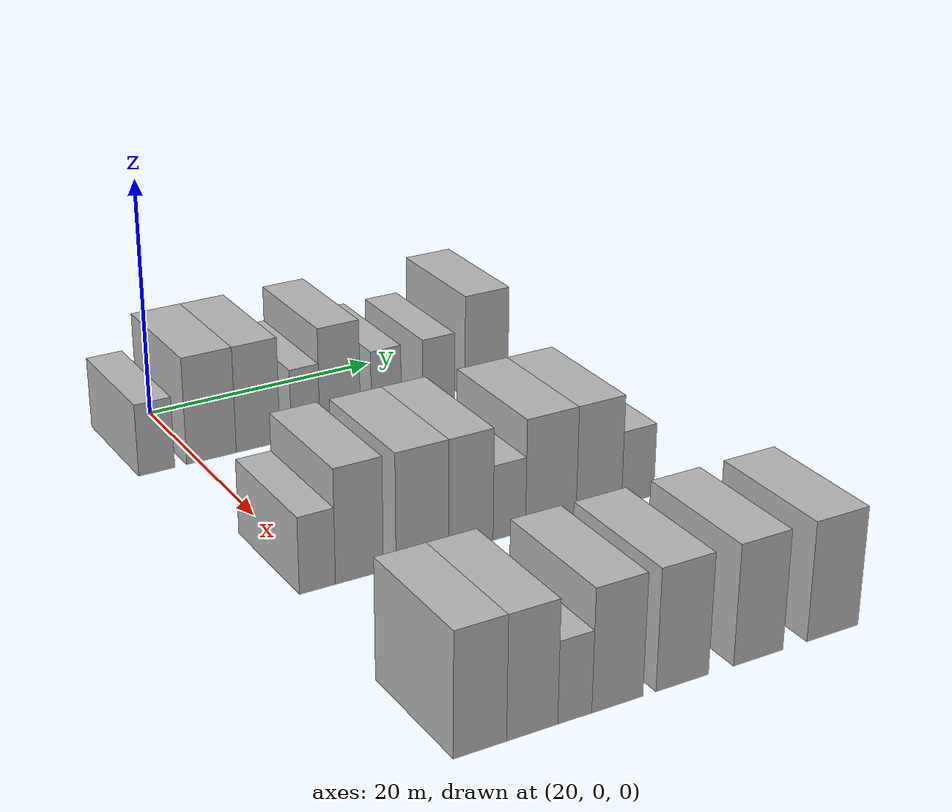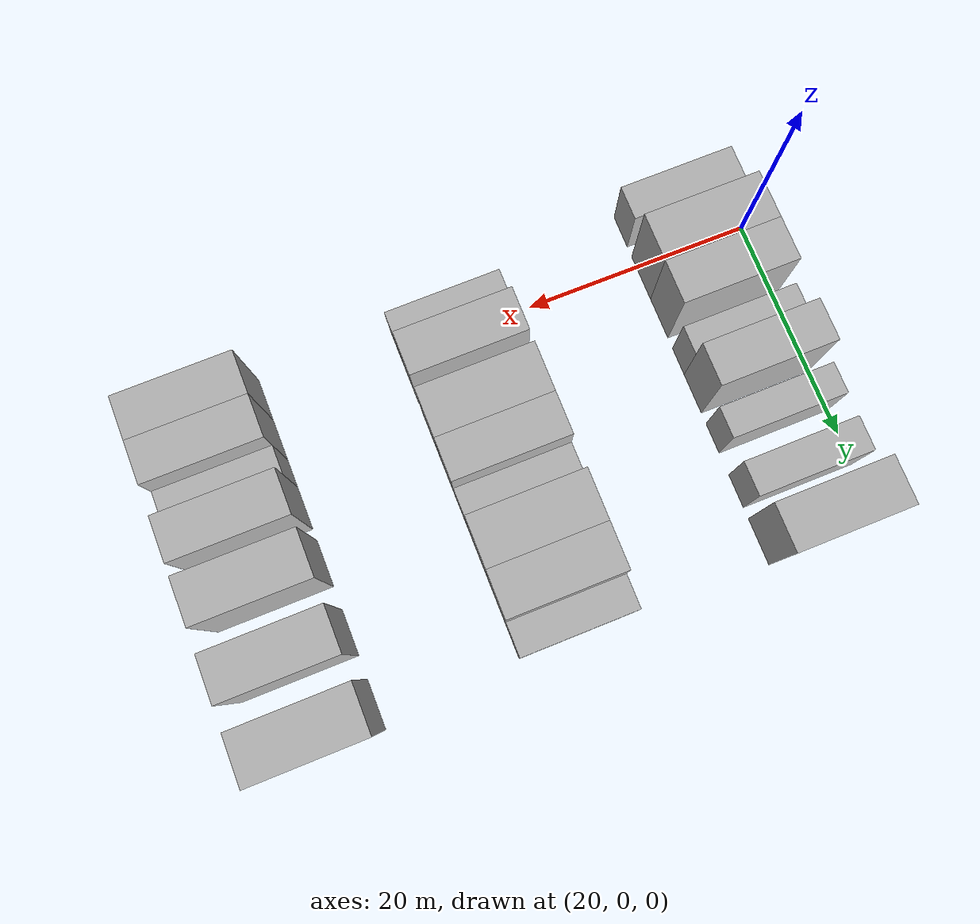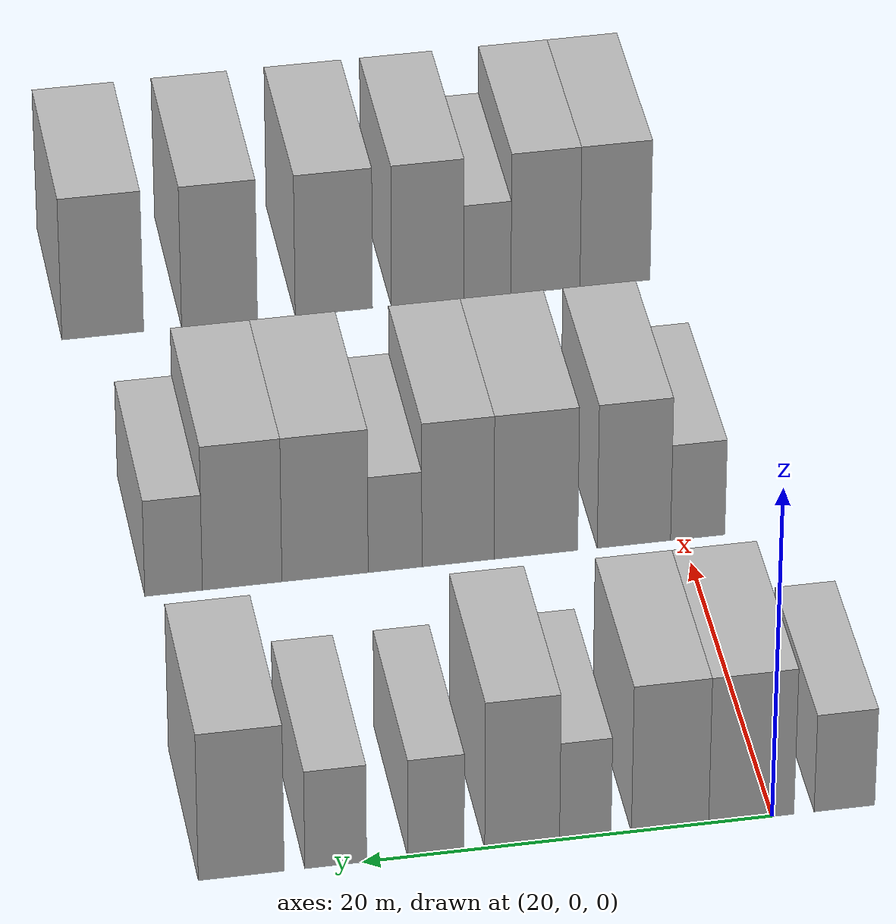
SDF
<sdf version="1.6">
 <world name="default">
  <model name="building_58">
   <static>1</static>
   <pose>25.0000 -3.5515 0 0.000000 0.000000 0.000000</pose>
   <link name="link">
    <pose>0 0 3.00 0 0 0</pose>
    <collision name="collision"><geometry><box><size>10.0000 2.9817 6.0000</size></box></geometry></collision>
    <visual name="visual">
     <cast_shadows>0</cast_shadows>
     <geometry><box><size>10.0000 2.9817 6.0000</size></box></geometry>
     <material>
      <script>
       <uri>model://HANNAS_wall/materials/scripts</uri>
       <uri>model://HANNAS_wall/materials/textures</uri>
       <name>vrc/HANNAS_wall</name>
      </script>
     </material>
    </visual>
   </link>
  </model>
  <model name="building_59">
   <static>1</static>
   <pose>25.0000 1.0328 0 0.000000 0.000000 0.000000</pose>
   <link name="link">
    <pose>0 0 4.50 0 0 0</pose>
    <collision name="collision"><geometry><box><size>10.0000 4.1870 9.0000</size></box></geometry></collision>
    <visual name="visual">
     <cast_shadows>0</cast_shadows>
     <geometry><box><size>10.0000 4.1870 9.0000</size></box></geometry>
     <material>
      <script>
       <uri>model://HANNAS_wall/materials/scripts</uri>
       <uri>model://HANNAS_wall/materials/textures</uri>
       <name>vrc/HANNAS_wall</name>
      </script>
     </material>
    </visual>
   </link>
  </model>
  <model name="building_60">
   <static>1</static>
   <pose>25.0000 5.0197 0 0.000000 0.000000 0.000000</pose>
   <link name="link">
    <pose>0 0 4.50 0 0 0</pose>
    <collision name="collision"><geometry><box><size>10.0000 3.7867 9.0000</size></box></geometry></collision>
    <visual name="visual">
     <cast_shadows>0</cast_shadows>
     <geometry><box><size>10.0000 3.7867 9.0000</size></box></geometry>
     <material>
      <script>
       <uri>model://HANNAS_wall/materials/scripts</uri>
       <uri>model://HANNAS_wall/materials/textures</uri>
       <name>vrc/HANNAS_wall</name>
      </script>
     </material>
    </visual>
   </link>
  </model>
  <model name="building_61">
   <static>1</static>
   <pose>25.0000 9.1701 0 0.000000 0.000000 0.000000</pose>
   <link name="link">
    <pose>0 0 3.00 0 0 0</pose>
    <collision name="collision"><geometry><box><size>10.0000 2.5142 6.0000</size></box></geometry></collision>
    <visual name="visual">
     <cast_shadows>0</cast_shadows>
     <geometry><box><size>10.0000 2.5142 6.0000</size></box></geometry>
     <material>
      <script>
       <uri>model://HANNAS_wall/materials/scripts</uri>
       <uri>model://HANNAS_wall/materials/textures</uri>
       <name>vrc/HANNAS_wall</name>
      </script>
     </material>
    </visual>
   </link>
  </model>
  <model name="building_62">
   <static>1</static>
   <pose>25.0000 12.2522 0 0.000000 0.000000 0.000000</pose>
   <link name="link">
    <pose>0 0 4.50 0 0 0</pose>
    <collision name="collision"><geometry><box><size>10.0000 3.6499 9.0000</size></box></geometry></collision>
    <visual name="visual">
     <cast_shadows>0</cast_shadows>
     <geometry><box><size>10.0000 3.6499 9.0000</size></box></geometry>
     <material>
      <script>
       <uri>model://HANNAS_wall/materials/scripts</uri>
       <uri>model://HANNAS_wall/materials/textures</uri>
       <name>vrc/HANNAS_wall</name>
      </script>
     </material>
    </visual>
   </link>
  </model>
  <model name="building_63">
   <static>1</static>
   <pose>25.0000 16.4479 0 0.000000 0.000000 0.000000</pose>
   <link name="link">
    <pose>0 0 3.00 0 0 0</pose>
    <collision name="collision"><geometry><box><size>10.0000 2.7415 6.0000</size></box></geometry></collision>
    <visual name="visual">
     <cast_shadows>0</cast_shadows>
     <geometry><box><size>10.0000 2.7415 6.0000</size></box></geometry>
     <material>
      <script>
       <uri>model://HANNAS_wall/materials/scripts</uri>
       <uri>model://HANNAS_wall/materials/textures</uri>
       <name>vrc/HANNAS_wall</name>
      </script>
     </material>
    </visual>
   </link>
  </model>
  <model name="building_64">
   <static>1</static>
   <pose>25.0000 21.3149 0 0.000000 0.000000 0.000000</pose>
   <link name="link">
    <pose>0 0 3.00 0 0 0</pose>
    <collision name="collision"><geometry><box><size>10.0000 2.9923 6.0000</size></box></geometry></collision>
    <visual name="visual">
     <cast_shadows>0</cast_shadows>
     <geometry><box><size>10.0000 2.9923 6.0000</size></box></geometry>
     <material>
      <script>
       <uri>model://HANNAS_wall/materials/scripts</uri>
       <uri>model://HANNAS_wall/materials/textures</uri>
       <name>vrc/HANNAS_wall</name>
      </script>
     </material>
    </visual>
   </link>
  </model>
  <model name="building_65">
   <static>1</static>
   <pose>25.0000 25.8842 0 0.000000 0.000000 0.000000</pose>
   <link name="link">
    <pose>0 0 4.50 0 0 0</pose>
    <collision name="collision"><geometry><box><size>10.0000 4.1463 9.0000</size></box></geometry></collision>
    <visual name="visual">
     <cast_shadows>0</cast_shadows>
     <geometry><box><size>10.0000 4.1463 9.0000</size></box></geometry>
     <material>
      <script>
       <uri>model://HANNAS_wall/materials/scripts</uri>
       <uri>model://HANNAS_wall/materials/textures</uri>
       <name>vrc/HANNAS_wall</name>
      </script>
     </material>
    </visual>
   </link>
  </model>
  <model name="building_189">
   <static>1</static>
   <pose>47.0000 -0.7223 0 0.000000 0.000000 0.000000</pose>
   <link name="link">
    <pose>0 0 3.00 0 0 0</pose>
    <collision name="collision"><geometry><box><size>10.0000 2.7866 6.0000</size></box></geometry></collision>
    <visual name="visual">
     <cast_shadows>0</cast_shadows>
     <geometry><box><size>10.0000 2.7866 6.0000</size></box></geometry>
     <material>
      <script>
       <uri>model://HANNAS_wall/materials/scripts</uri>
       <uri>model://HANNAS_wall/materials/textures</uri>
       <name>vrc/HANNAS_wall</name>
      </script>
     </material>
    </visual>
   </link>
  </model>
  <model name="building_190">
   <static>1</static>
   <pose>47.0000 2.5523 0 0.000000 0.000000 0.000000</pose>
   <link name="link">
    <pose>0 0 4.50 0 0 0</pose>
    <collision name="collision"><geometry><box><size>10.0000 3.7625 9.0000</size></box></geometry></collision>
    <visual name="visual">
     <cast_shadows>0</cast_shadows>
     <geometry><box><size>10.0000 3.7625 9.0000</size></box></geometry>
     <material>
      <script>
       <uri>model://HANNAS_wall/materials/scripts</uri>
       <uri>model://HANNAS_wall/materials/textures</uri>
       <name>vrc/HANNAS_wall</name>
      </script>
     </material>
    </visual>
   </link>
  </model>
  <model name="building_191">
   <static>1</static>
   <pose>47.0000 7.5736 0 0.000000 0.000000 0.000000</pose>
   <link name="link">
    <pose>0 0 4.50 0 0 0</pose>
    <collision name="collision"><geometry><box><size>10.0000 4.2803 9.0000</size></box></geometry></collision>
    <visual name="visual">
     <cast_shadows>0</cast_shadows>
     <geometry><box><size>10.0000 4.2803 9.0000</size></box></geometry>
     <material>
      <script>
       <uri>model://HANNAS_wall/materials/scripts</uri>
       <uri>model://HANNAS_wall/materials/textures</uri>
       <name>vrc/HANNAS_wall</name>
      </script>
     </material>
    </visual>
   </link>
  </model>
  <model name="building_192">
   <static>1</static>
   <pose>47.0000 11.5489 0 0.000000 0.000000 0.000000</pose>
   <link name="link">
    <pose>0 0 4.50 0 0 0</pose>
    <collision name="collision"><geometry><box><size>10.0000 3.6703 9.0000</size></box></geometry></collision>
    <visual name="visual">
     <cast_shadows>0</cast_shadows>
     <geometry><box><size>10.0000 3.6703 9.0000</size></box></geometry>
     <material>
      <script>
       <uri>model://HANNAS_wall/materials/scripts</uri>
       <uri>model://HANNAS_wall/materials/textures</uri>
       <name>vrc/HANNAS_wall</name>
      </script>
     </material>
    </visual>
   </link>
  </model>
  <model name="building_193">
   <static>1</static>
   <pose>47.0000 14.7496 0 0.000000 0.000000 0.000000</pose>
   <link name="link">
    <pose>0 0 3.00 0 0 0</pose>
    <collision name="collision"><geometry><box><size>10.0000 2.7311 6.0000</size></box></geometry></collision>
    <visual name="visual">
     <cast_shadows>0</cast_shadows>
     <geometry><box><size>10.0000 2.7311 6.0000</size></box></geometry>
     <material>
      <script>
       <uri>model://HANNAS_wall/materials/scripts</uri>
       <uri>model://HANNAS_wall/materials/textures</uri>
       <name>vrc/HANNAS_wall</name>
      </script>
     </material>
    </visual>
   </link>
  </model>
  <model name="building_194">
   <static>1</static>
   <pose>47.0000 18.3026 0 0.000000 0.000000 0.000000</pose>
   <link name="link">
    <pose>0 0 4.50 0 0 0</pose>
    <collision name="collision"><geometry><box><size>10.0000 4.3749 9.0000</size></box></geometry></collision>
    <visual name="visual">
     <cast_shadows>0</cast_shadows>
     <geometry><box><size>10.0000 4.3749 9.0000</size></box></geometry>
     <material>
      <script>
       <uri>model://HANNAS_wall/materials/scripts</uri>
       <uri>model://HANNAS_wall/materials/textures</uri>
       <name>vrc/HANNAS_wall</name>
      </script>
     </material>
    </visual>
   </link>
  </model>
  <model name="building_195">
   <static>1</static>
   <pose>47.0000 22.4997 0 0.000000 0.000000 0.000000</pose>
   <link name="link">
    <pose>0 0 4.50 0 0 0</pose>
    <collision name="collision"><geometry><box><size>10.0000 4.0193 9.0000</size></box></geometry></collision>
    <visual name="visual">
     <cast_shadows>0</cast_shadows>
     <geometry><box><size>10.0000 4.0193 9.0000</size></box></geometry>
     <material>
      <script>
       <uri>model://HANNAS_wall/materials/scripts</uri>
       <uri>model://HANNAS_wall/materials/textures</uri>
       <name>vrc/HANNAS_wall</name>
      </script>
     </material>
    </visual>
   </link>
  </model>
  <model name="building_196">
   <static>1</static>
   <pose>47.0000 25.9637 0 0.000000 0.000000 0.000000</pose>
   <link name="link">
    <pose>0 0 3.00 0 0 0</pose>
    <collision name="collision"><geometry><box><size>10.0000 2.9088 6.0000</size></box></geometry></collision>
    <visual name="visual">
     <cast_shadows>0</cast_shadows>
     <geometry><box><size>10.0000 2.9088 6.0000</size></box></geometry>
     <material>
      <script>
       <uri>model://HANNAS_wall/materials/scripts</uri>
       <uri>model://HANNAS_wall/materials/textures</uri>
       <name>vrc/HANNAS_wall</name>
      </script>
     </material>
    </visual>
   </link>
  </model>
  <model name="building_314">
   <static>1</static>
   <pose>69.0000 -0.6744 0 0.000000 0.000000 0.000000</pose>
   <link name="link">
    <pose>0 0 4.50 0 0 0</pose>
    <collision name="collision"><geometry><box><size>10.0000 3.7486 9.0000</size></box></geometry></collision>
    <visual name="visual">
     <cast_shadows>0</cast_shadows>
     <geometry><box><size>10.0000 3.7486 9.0000</size></box></geometry>
     <material>
      <script>
       <uri>model://HANNAS_wall/materials/scripts</uri>
       <uri>model://HANNAS_wall/materials/textures</uri>
       <name>vrc/HANNAS_wall</name>
      </script>
     </material>
    </visual>
   </link>
  </model>
  <model name="building_315">
   <static>1</static>
   <pose>69.0000 3.0452 0 0.000000 0.000000 0.000000</pose>
   <link name="link">
    <pose>0 0 4.50 0 0 0</pose>
    <collision name="collision"><geometry><box><size>10.0000 3.6907 9.0000</size></box></geometry></collision>
    <visual name="visual">
     <cast_shadows>0</cast_shadows>
     <geometry><box><size>10.0000 3.6907 9.0000</size></box></geometry>
     <material>
      <script>
       <uri>model://HANNAS_wall/materials/scripts</uri>
       <uri>model://HANNAS_wall/materials/textures</uri>
       <name>vrc/HANNAS_wall</name>
      </script>
     </material>
    </visual>
   </link>
  </model>
  <model name="building_316">
   <static>1</static>
   <pose>69.0000 6.1457 0 0.000000 0.000000 0.000000</pose>
   <link name="link">
    <pose>0 0 3.00 0 0 0</pose>
    <collision name="collision"><geometry><box><size>10.0000 2.5104 6.0000</size></box></geometry></collision>
    <visual name="visual">
     <cast_shadows>0</cast_shadows>
     <geometry><box><size>10.0000 2.5104 6.0000</size></box></geometry>
     <material>
      <script>
       <uri>model://HANNAS_wall/materials/scripts</uri>
       <uri>model://HANNAS_wall/materials/textures</uri>
       <name>vrc/HANNAS_wall</name>
      </script>
     </material>
    </visual>
   </link>
  </model>
  <model name="building_317">
   <static>1</static>
   <pose>69.0000 9.3304 0 0.000000 0.000000 0.000000</pose>
   <link name="link">
    <pose>0 0 4.50 0 0 0</pose>
    <collision name="collision"><geometry><box><size>10.0000 3.8589 9.0000</size></box></geometry></collision>
    <visual name="visual">
     <cast_shadows>0</cast_shadows>
     <geometry><box><size>10.0000 3.8589 9.0000</size></box></geometry>
     <material>
      <script>
       <uri>model://HANNAS_wall/materials/scripts</uri>
       <uri>model://HANNAS_wall/materials/textures</uri>
       <name>vrc/HANNAS_wall</name>
      </script>
     </material>
    </visual>
   </link>
  </model>
  <model name="building_318">
   <static>1</static>
   <pose>69.0000 14.3085 0 0.000000 0.000000 0.000000</pose>
   <link name="link">
    <pose>0 0 4.50 0 0 0</pose>
    <collision name="collision"><geometry><box><size>10.0000 4.0975 9.0000</size></box></geometry></collision>
    <visual name="visual">
     <cast_shadows>0</cast_shadows>
     <geometry><box><size>10.0000 4.0975 9.0000</size></box></geometry>
     <material>
      <script>
       <uri>model://HANNAS_wall/materials/scripts</uri>
       <uri>model://HANNAS_wall/materials/textures</uri>
       <name>vrc/HANNAS_wall</name>
      </script>
     </material>
    </visual>
   </link>
  </model>
  <model name="building_319">
   <static>1</static>
   <pose>69.0000 20.3614 0 0.000000 0.000000 0.000000</pose>
   <link name="link">
    <pose>0 0 4.50 0 0 0</pose>
    <collision name="collision"><geometry><box><size>10.0000 4.0081 9.0000</size></box></geometry></collision>
    <visual name="visual">
     <cast_shadows>0</cast_shadows>
     <geometry><box><size>10.0000 4.0081 9.0000</size></box></geometry>
     <material>
      <script>
       <uri>model://HANNAS_wall/materials/scripts</uri>
       <uri>model://HANNAS_wall/materials/textures</uri>
       <name>vrc/HANNAS_wall</name>
      </script>
     </material>
    </visual>
   </link>
  </model>
  <model name="building_320">
   <static>1</static>
   <pose>69.0000 26.5168 0 0.000000 0.000000 0.000000</pose>
   <link name="link">
    <pose>0 0 4.50 0 0 0</pose>
    <collision name="collision"><geometry><box><size>10.0000 4.3027 9.0000</size></box></geometry></collision>
    <visual name="visual">
     <cast_shadows>0</cast_shadows>
     <geometry><box><size>10.0000 4.3027 9.0000</size></box></geometry>
     <material>
      <script>
       <uri>model://HANNAS_wall/materials/scripts</uri>
       <uri>model://HANNAS_wall/materials/textures</uri>
       <name>vrc/HANNAS_wall</name>
      </script>
     </material>
    </visual>
   </link>
  </model>
 </world>
</sdf>
